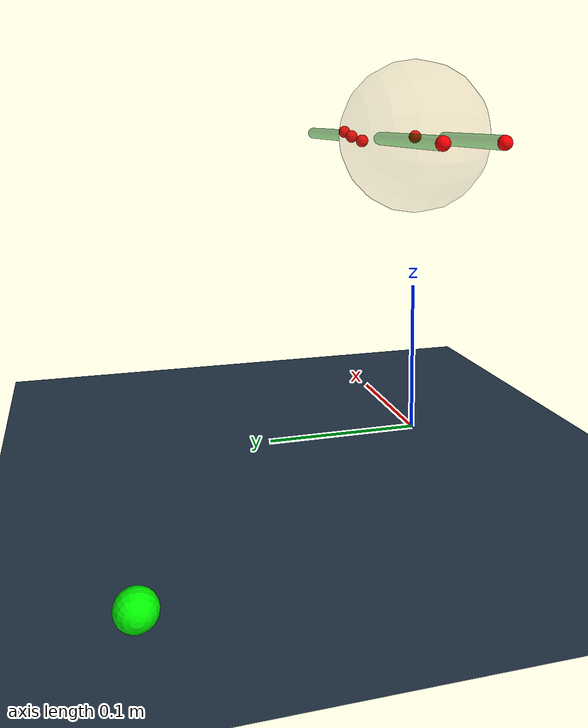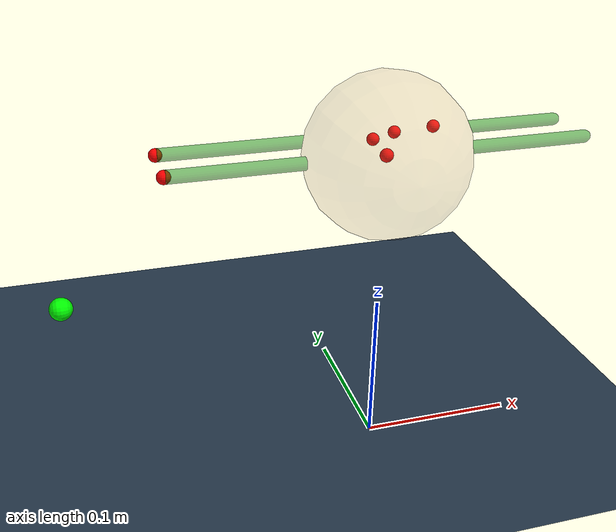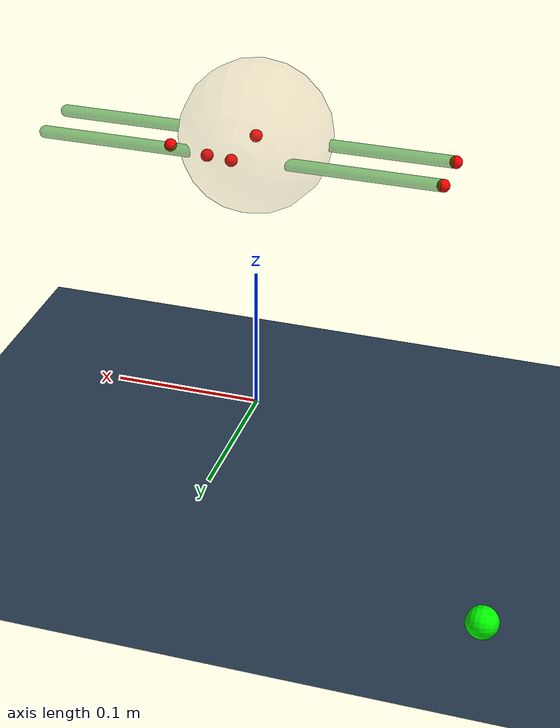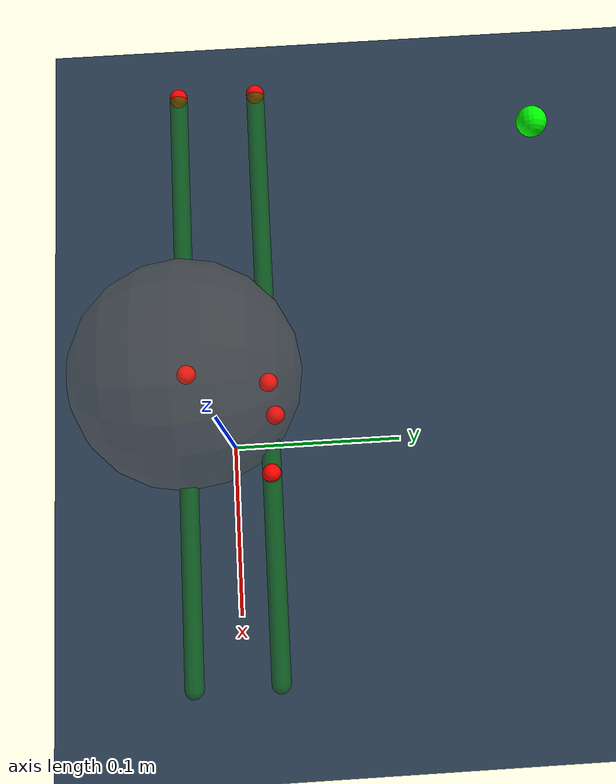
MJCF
<?xml version="1.0" encoding="utf-8"?>
<mujoco>
	<compiler angle="radian"></compiler>
	<size njmax="400" nconmax="100" nuser_jnt="1" nuser_site="1" nuser_tendon="1" nuser_sensor="1" nuser_actuator="16" nstack="600000"></size>
	<option timestep="0.01" iterations="20" apirate="200" noslip_iterations="20"  impratio="10"></option>
	<asset>
		<material name="self" rgba=".7 .5 .3 0.1"/>
		<texture builtin="gradient" height="100" rgb1="1 1 1" rgb2="0 0 0" type="skybox" width="100"/>
		<texture name="texplane" type="2d" builtin="checker" rgb1=".2 .3 .4" rgb2=".1 0.15 0.2" width="512" height="512"></texture>
		<material name="MatGnd" reflectance="0.5" texture="texplane" texrepeat="2 2" texuniform="true"></material>
		<material name="MatPlane" reflectance="0.05" texture="texplane" texrepeat="1 1" texuniform="true"></material>
	</asset>
	<default>
		<default class="Adroit">
			<geom friction="1 0.005 0.001" condim="3" margin="0.0005" contype="1" conaffinity="1"></geom>
			<joint limited="true" damping="0.05" armature=".001" margin="0.01" frictionloss="0.001"></joint>
			<tendon limited="true"></tendon>
			<site size="0.005" rgba=".4 .9 .4 0"></site>
			<default class="D_Touch">
				<site type="box" size="0.009 0.004 0.013" pos="0 -.004 .018" rgba=".8 .8 .8 .15" group="4"></site>
			</default>
			<default class="DC_Hand">
				<geom contype="1" conaffinity="0" material="self" group="2"></geom>
			</default>
		</default>
	</default>

	<worldbody>
		<light diffuse="1 1 1" dir="-0 0 -1.3" directional="true" exponent="1" pos="0 0 1.3" specular=".1 .1 .1" castshadow = "false"/>
		<geom name="ground" pos="0 0 0" size="1 1 5" material="MatGnd" type="plane" contype="1" conaffinity="1"></geom>
        <body name = "chopstick2" pos = "0 0 0.2">
            <joint name="chopstick2" armature=".0001" type="free"></joint>
			<geom class="DC_Hand" name="C_hand" type="sphere" pos="0 0 0.0"  quat=".707 .707 0 0" size=".05" />
            <geom name="chopstick2" density="1000" condim="4" size="0.004 0.13" pos="0.0 -0.0 0.0" type="capsule"  quat="0.707 0 0.707 0" friction="1 0.005 0.0001" rgba="0  0.5 0. 0.5"></geom>
            <site name="origin" pos="-0. 0.0 0.0" size=".0041" type="sphere" rgba="1 0 0 1."></site>
            <site name="end2" pos="-0.13 0.0 0.00" size=".0041" type="sphere" rgba = '1 0 0 1'></site>
            <body name="chopstick1" pos="0.045 0.035 0.0">
                <joint name="Rz1" armature=".01" type="hinge" pos="0 0 0" axis="0 0 1" range="-0.2 0.2"></joint>
                <geom name="chopstick1" density="1000" condim="4" size="0.004 0.13" pos="-0.045 -0.0 0.0" type="capsule" quat="0.707 0 0.707 0" friction="1 0.005 0.0001" rgba="0  0.5 0. 0.5"></geom>
                <site name="c_thtip" pos="0.0 0.0 0.0025" size=".004" type="sphere" rgba="1 0 0 1"></site>
                <site name="c_mftip" pos="-0.04 0.0 -0.0025" size=".004" type="sphere" rgba="1 0 0 1"></site>
                <site name="c_fftip" pos="-0.025 0.0025 0.00" size=".004" type="sphere" rgba="1 0 0 1"></site>
                <site name="end1" pos="-0.175 0.0 0.0" size=".0041" type="sphere" rgba = '1 0 0 1'></site>
            </body>
        </body>
        <body name="object" pos="-0.2 0.2 0.01">
			<joint name="object" type="free" armature="0.0001"></joint>
			<geom name="object" size="0.01" pos="0 0 0" type="sphere" rgba="0 1 0 1" quat="0.707 0 0.707 0"></geom>
		</body>
	</worldbody>
</mujoco>
